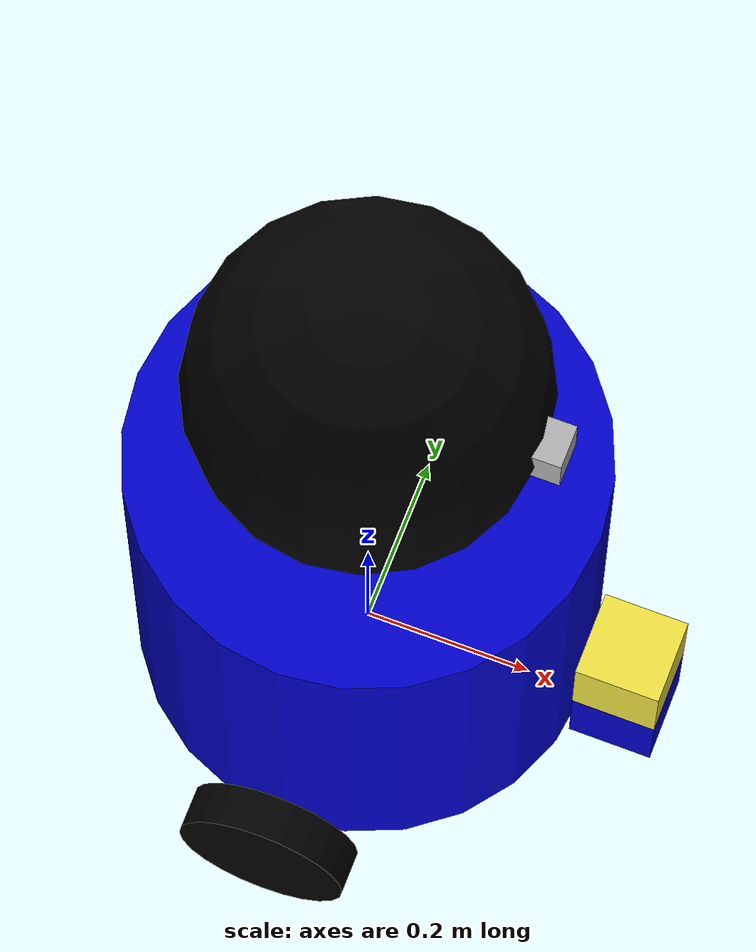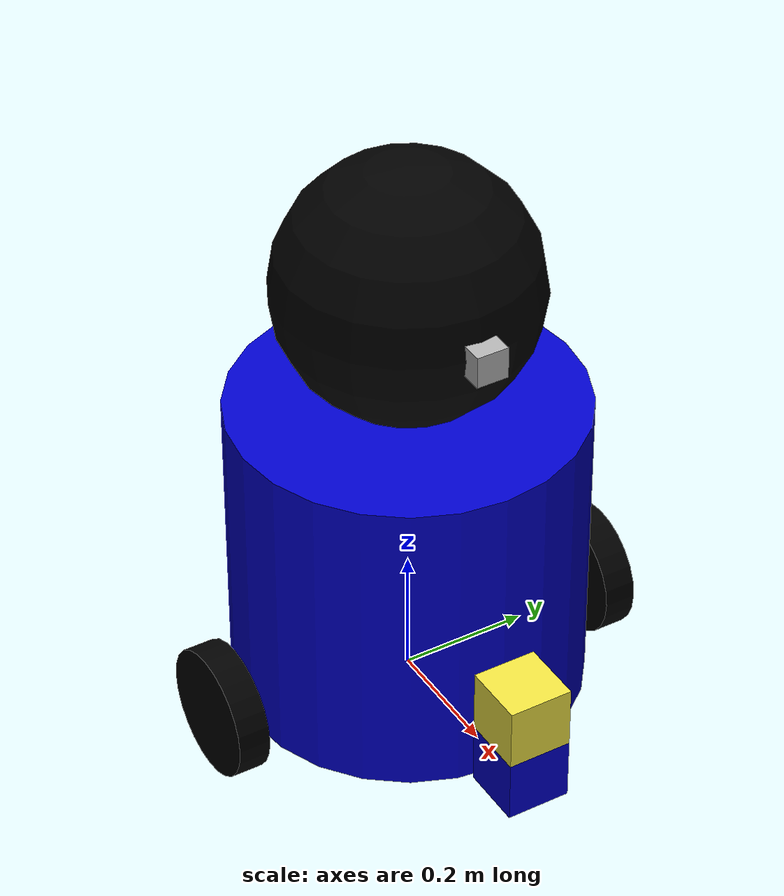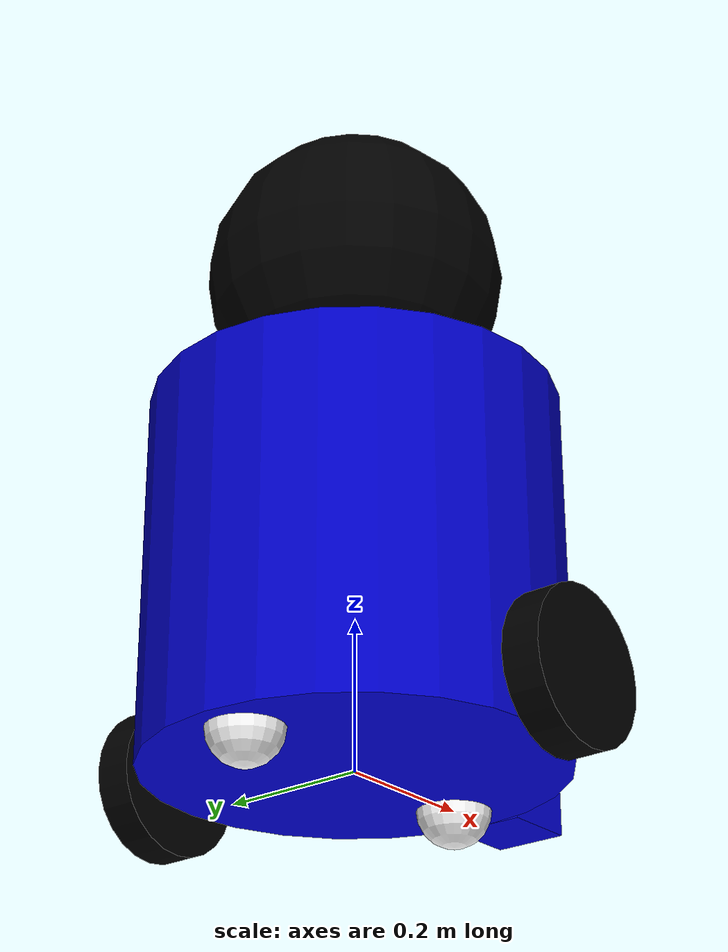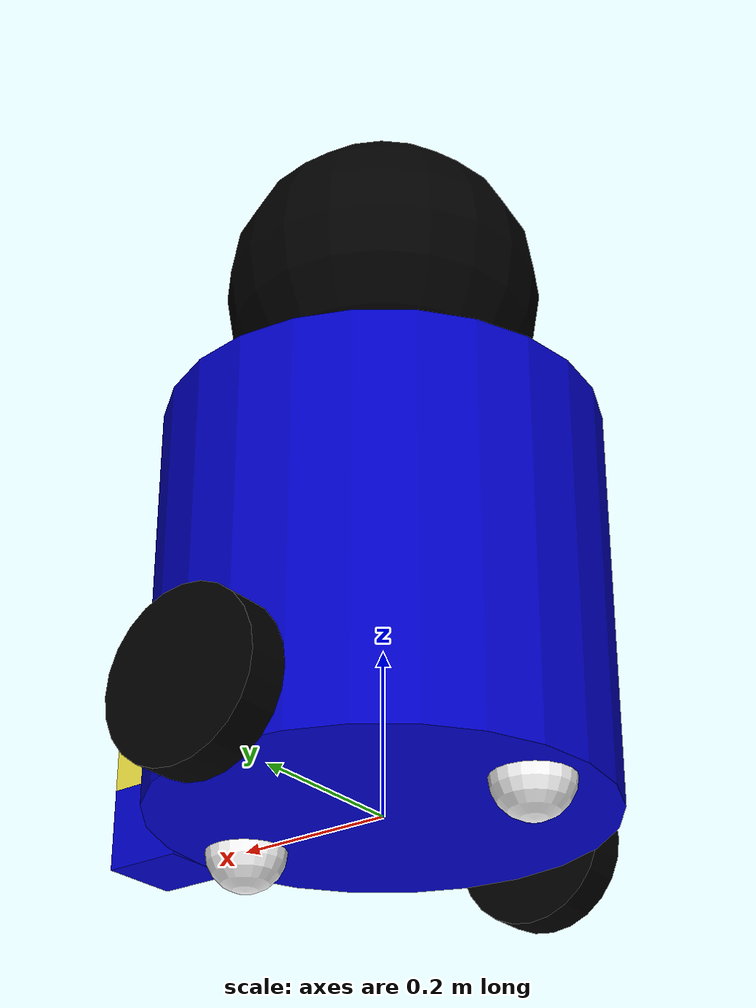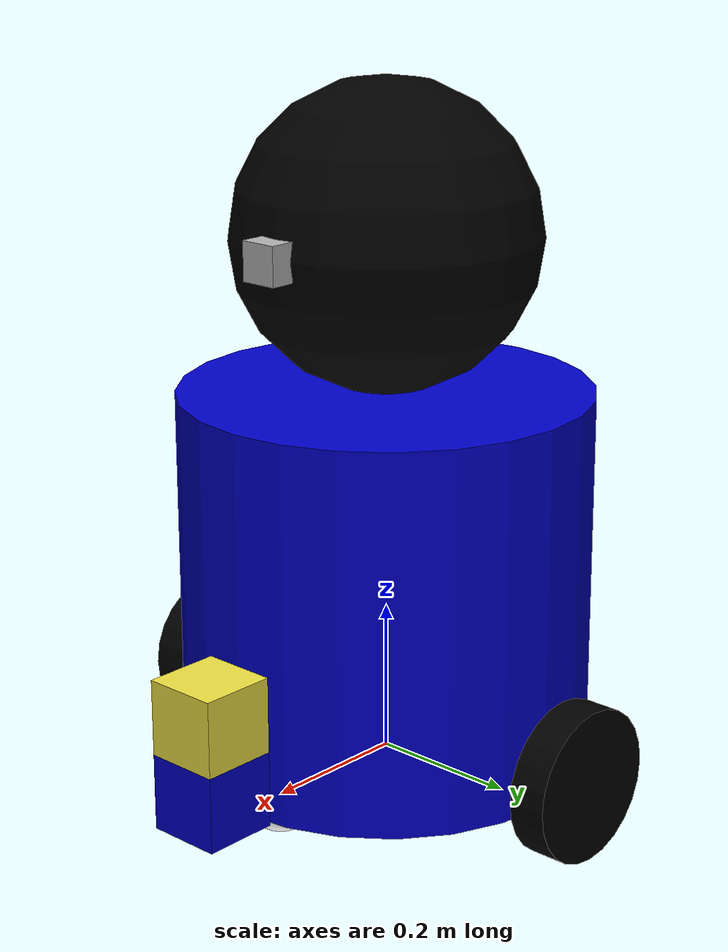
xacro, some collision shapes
<?xml version='1.0'?>

<robot name="my_droid" xmlns:xacro="http://www.ros.org/wiki/xacro">

  <xacro:include filename="$(find my_droid)/urdf/udacity_bot.gazebo" />

  <link name="robot_footprint"></link>

  <joint name="robot_footprint_joint" type="fixed">
    <origin xyz="0 0 0.25" rpy="0 0 0" />
    <parent link="robot_footprint"/>
    <child link="body" />
  </joint>

  <material name="blue">
    <color rgba="0 0 0.8 1"/>
    </material>

  <material name="black">
    <color rgba="0 0 0 1"/>
    </material>

  <material name="white">
    <color rgba="1 1 1 1"/>
    </material>

<!--body-->
  <link name='body'>
    <pose>0 0 0 0 0 0</pose>
    <inertial>
      <mass value="10.0"/>
      <origin xyz="0 0 0" rpy=" 0 0 0"/>
      <inertia
          ixx="0.1" ixy="0" ixz="0"
          iyy="0.1" iyz="0"
          izz="0.8"
               />
    </inertial>

    <collision name='body_collision'>
      <origin xyz="0 0 0" rpy=" 0 0 0"/>
      <geometry>
        <cylinder length="0.5" radius="0.27"/>
      </geometry>
    </collision>

    <visual name='body_visual'>
      <origin xyz="0 0 0" rpy=" 0 0 0"/>
      <geometry>
        <cylinder length="0.5" radius="0.27"/>
      </geometry>
      <material name="blue"/>
    </visual>
   </link>

<!--left wheel-->
   <link name='left_wheel'>
    <inertial>
      <mass value="5.0"/>
      <origin xyz="0 0 0" rpy="0 1.5707 1.5707"/>
      <inertia
          ixx="0.1" ixy="0" ixz="0"
          iyy="0.1" iyz="0"
          izz="0.1"
      />
    </inertial>

    <visual name='left_wheel_visual'>
     <origin xyz="0 0 0" rpy=" 0 1.5707 1.5707"/>
     <geometry>
      <cylinder length="0.05" radius="0.1"/>
     </geometry>
     <material name="black"/>
    </visual>

    <collision name='left_wheel_collision'>
     <origin xyz="0 0 0" rpy=" 0 1.5707 1.5707"/>
     <geometry>
       <cylinder length="0.05" radius="0.1"/>
     </geometry>
    </collision>
  </link>

  <joint type="continuous" name="left_wheel_hinge">
    <origin xyz="0 0.32 -0.198" rpy="0 0 0"/>
    <child link="left_wheel"/>
    <parent link="body"/>
    <axis xyz="0 1 0" rpy="0 0 0"/>
    <limit effort="10000" velocity="1000"/>
    <joint_properties damping="1.0" friction="1.0"/>
  </joint>

<!--right wheel-->
  <link name='right_wheel'>
    <inertial>
      <mass value="5.0"/>
      <origin xyz="0 0 0" rpy="0 1.5707 1.5707"/>
      <inertia
          ixx="0.1" ixy="0" ixz="0"
          iyy="0.1" iyz="0"
          izz="0.1"
      />
    </inertial>

    <visual name='right_wheel_visual'>
     <origin xyz="0 0 0" rpy=" 0 1.5707 1.5707"/>
     <geometry>
      <cylinder length="0.05" radius="0.1"/>
     </geometry>
     <material name="black"/>
    </visual>

    <collision name='right_wheel_collision'>
     <origin xyz="0 0 0" rpy=" 0 1.5707 1.5707"/>
     <geometry>
       <cylinder length="0.05" radius="0.1"/>
     </geometry>
    </collision>
  </link>

  <joint type="continuous" name="right_wheel_hinge">
    <origin xyz="0 -0.32 -0.198" rpy="0 0 0"/>
    <child link="right_wheel"/>
    <parent link="body"/>
    <axis xyz="0 1 0" rpy="0 0 0"/>
    <limit effort="10000" velocity="1000"/>
    <joint_properties damping="1.0" friction="1.0"/>
  </joint>

<!--back caster-->
  <link name='back_caster'>
    <inertial>
      <mass value="1.0"/>
      <origin xyz="0 0 0" rpy="0 0 0"/>
      <inertia
          ixx="0.1" ixy="0" ixz="0"
          iyy="0.1" iyz="0"
          izz="0.1"
      />
    </inertial>

    <visual name='back_caster_visual'>
      <origin xyz="0 0 0" rpy=" 0 0 0"/>
      <geometry>
        <sphere radius="0.049"/>
      </geometry>
      <material name="white"/>
    </visual>

    <collision name='front_caster_collision'>
      <origin xyz="0 0 0" rpy=" 0 0 0"/>
      <geometry>
        <sphere radius="0.048"/>
      </geometry>
    </collision>
 </link>

  <joint type="continuous" name="back_caster_hinge">
    <origin xyz="-0.2 0 -0.249" rpy="0 0 0"/>
    <child link="back_caster"/>
    <parent link="body"/>
    <axis xyz="0 1 0" rpy="0 0 0"/>
    <limit effort="10000" velocity="1000"/>
    <joint_properties damping="1.0" friction="1.0"/>
  </joint>

<!--front caster-->
  <link name='front_caster'>
    <inertial>
      <mass value="1.0"/>
      <origin xyz="0 0 0" rpy="0 0 0"/>
      <inertia
          ixx="0.1" ixy="0" ixz="0"
          iyy="0.1" iyz="0"
          izz="0.1"
      />
    </inertial>

    <visual name='front_caster_visual'>
      <origin xyz="0 0 0" rpy=" 0 0 0"/>
      <geometry>
        <sphere radius="0.049"/>
      </geometry>
      <material name="white"/>
    </visual>

    <collision name='front_caster_collision'>
      <origin xyz="0 0 0" rpy=" 0 0 0"/>
      <geometry>
        <sphere radius="0.048"/>
      </geometry>
    </collision>
 </link>

  <joint type="continuous" name="front_caster_hinge">
    <origin xyz="0.2 0 -0.249" rpy="0 0 0"/>
    <child link="front_caster"/>
    <parent link="body"/>
    <axis xyz="0 1 0" rpy="0 0 0"/>
    <limit effort="10000" velocity="1000"/>
    <joint_properties damping="1.0" friction="1.0"/>
  </joint>

<!--head-->
  <link name='head'>
    <inertial>
      <mass value="5.0"/>
      <origin xyz="0 0 0" rpy="0 0 0"/>
      <inertia
          ixx="1.0" ixy="0" ixz="0"
          iyy="1.0" iyz="0"
          izz="1.0"
               />
      </inertial>

      <collision name="head">
        <origin xyz="0 0 0" rpy="0 0 0"/>
        <geometry>
          <sphere radius="0.2"/>
        </geometry>
      </collision>

     <visual name='head_visual'>
     <origin xyz="0 0 0" rpy=" 0 0 0"/>
     <geometry>
          <sphere radius="0.2"/>
     </geometry>
     <material name="black"/>
    </visual>
   </link>

  <joint type="fixed" name="head_hinge">
    <origin xyz="0 0 0.45" rpy="0 0 0"/>
    <child link="head"/>
    <parent link="body"/>
    <axis xyz="0 0 1" rpy="0 0 0"/>
  </joint>

<!--camera-->
  <link name='camera'>
    <inertial>
      <mass value="0.1"/>
      <origin xyz="0 0 0" rpy="0 0 0"/>
      <inertia
          ixx="1e-6" ixy="0" ixz="0"
          iyy="1e-6" iyz="0"
          izz="1e-6"
      />
    </inertial>

    <visual name='camera_visual'>
     <origin xyz="0 0 0" rpy=" 0 0 0"/>
     <geometry>
      <box size="0.05 0.05 0.05"/>
     </geometry>
    </visual>

    <collision name='camera_collision'>
     <origin xyz="0 0 0" rpy=" 0 0 0"/>
     <geometry>
      <box size="0.05 0.05 0.05"/>
     </geometry>
    </collision>

  </link>

  <joint type="fixed" name="camera_joint">
    <origin xyz="0.2 0 0" rpy="0 0 0"/>
    <child link="camera"/>
    <parent link="head"/>
    <axis xyz="1 0 0" rpy="0 0 0"/>
  </joint>

<!--camera frames-->
	<link name='camera_rgbd_frame'>
		  <inertial>
		    <mass value="0.001"/>
		    <origin xyz="0 0 0" rpy="0 0 0"/>
		    <inertia
		        ixx="1e-6" ixy="0" ixz="0"
		        iyy="1e-6" iyz="0"
		        izz="1e-6"
		    />
		  </inertial>
	</link>

	<link name='rotation_frame'>
		  <inertial>
		    <mass value="0.001"/>
		    <origin xyz="0 0 0" rpy="0 0 0"/>
		    <inertia
		        ixx="1e-6" ixy="0" ixz="0"
		        iyy="1e-6" iyz="0"
		        izz="1e-6"
		    />
		  </inertial>
	</link>

  <joint type="fixed" name="rotation_joint">
    <origin xyz="0 0 0" rpy="0 0 -1.57"/>
    <child link="camera_rgbd_frame"/>
    <parent link="rotation_frame"/>
    <axis xyz="1 0 0" rpy="0 0 0"/>
  </joint>

  <joint type="fixed" name="camera_rgbd_frame_joint">
    <origin xyz="0 0 0" rpy="0 1.57 0"/>
    <child link="rotation_frame"/>
    <parent link="camera"/>
    <axis xyz="1 0 0" rpy="0 0 0"/>
  </joint>

<!--hokuyo-->
  <link name='Hokuyo_base'>
    <inertial>
      <mass value="0.1"/>
      <origin xyz="0 0 0" rpy="0 0 0"/>
      <inertia
          ixx="1e-6" ixy="0" ixz="0"
          iyy="1e-6" iyz="0"
          izz="1e-6"
      />
    </inertial>

    <visual name='base_visual'>
     <origin xyz="0 0 0" rpy=" 0 0 0"/>
     <geometry>
      <box size="0.1 0.1 0.1"/>
     </geometry>
     <material name="blue"/>
    </visual>

    <collision name='hokuyo_collision'>
     <origin xyz="0 0 0" rpy=" 0 0 0"/>
     <geometry>
      <box size="0.1 0.1 0.1"/>
     </geometry>
    </collision>
   </link>

   <joint type="fixed" name="Base_joint">
    <origin xyz="0.32 0 -0.20" rpy="0 0 0"/>
    <child link="Hokuyo_base"/>
    <parent link="body"/>
    <axis xyz="1 0 0" rpy="0 0 0"/>
  </joint>

  <link name='hokuyo'>
    <inertial>
      <mass value="0.1"/>
      <origin xyz="0 0 0" rpy="0 0 0"/>
      <inertia
          ixx="1e-6" ixy="0" ixz="0"
          iyy="1e-6" iyz="0"
          izz="1e-6"
      />
    </inertial>

    <visual name='hokuyo_visual'>
     <origin xyz="0 0 0" rpy=" 0 0 0"/>
     <geometry>
      <mesh filename="package://my_droid/meshes/hokuyo.dae"/>
     </geometry>
    </visual>

    <collision name='hokuyo_collision'>
     <origin xyz="0 0 0" rpy=" 0 0 0"/>
     <geometry>
      <box size="0.1 0.1 0.1"/>
     </geometry>
    </collision>
  </link>

  <joint type="fixed" name="hokuyo_joint">
    <origin xyz="0 0 0.1" rpy="0 0 0"/>
    <child link="hokuyo"/>
    <parent link="Hokuyo_base"/>
    <axis xyz="0 0 1" rpy="0 0 0"/>
  </joint>

</robot>
